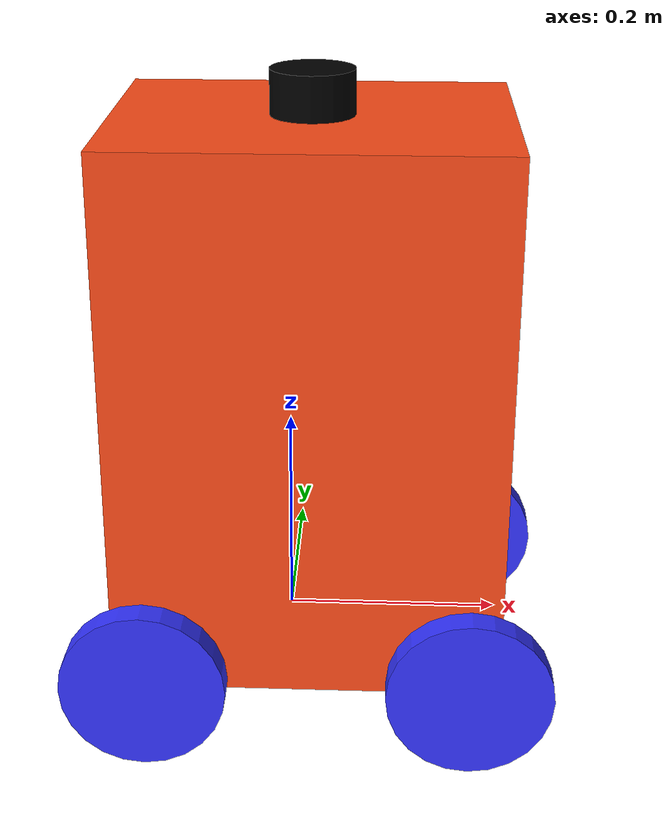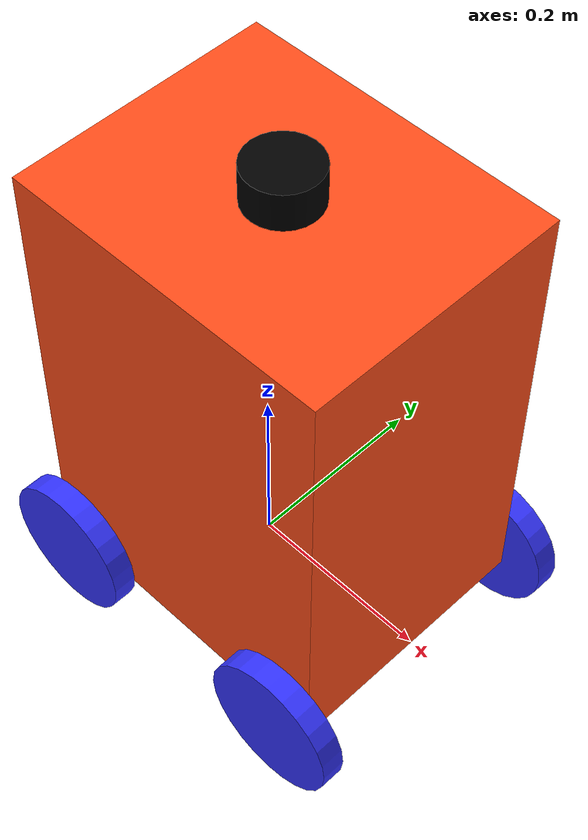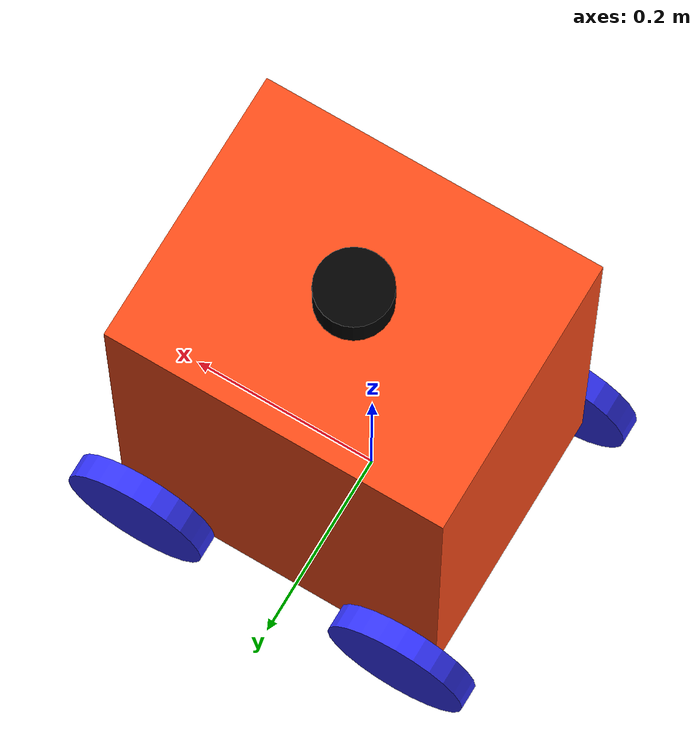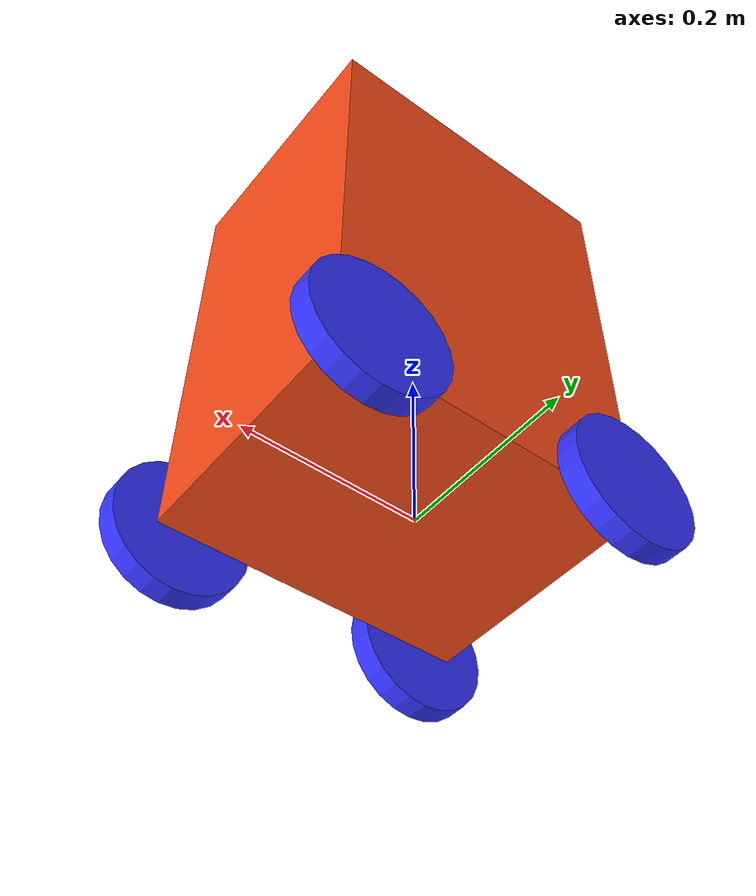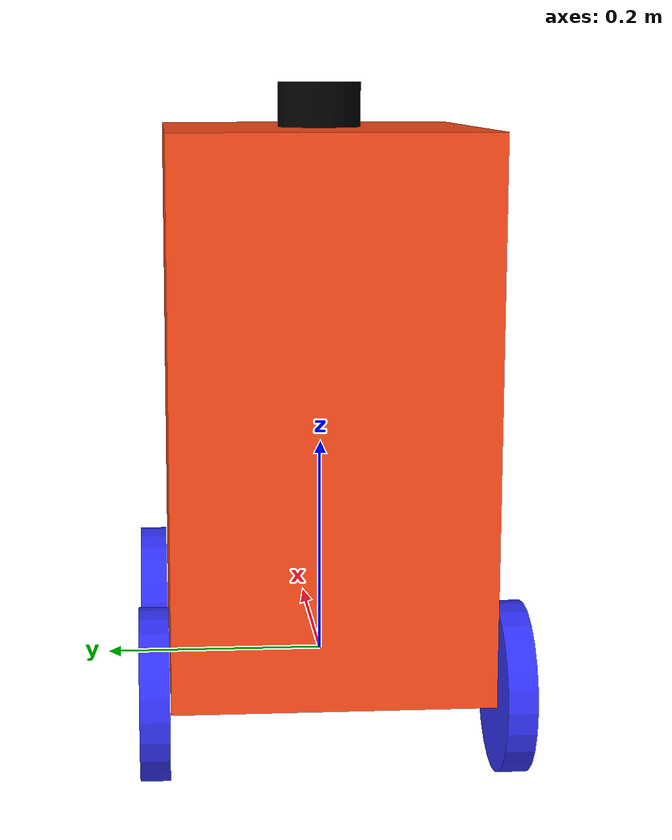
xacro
<?xml version='1.0'?>

<robot name="trail_robot" xmlns:xacro="http://www.ros.org/wiki/xacro">

  <!-- Arguments -->
  <xacro:arg name="use_ros1_control" default="false"/>
  <xacro:arg name="sim_mode" default="false"/>

  <!-- Include Core Components -->
  <xacro:include filename="robot_core.xacro" />

  <!-- Conditional Includes -->
  <xacro:if value="$(arg use_ros1_control)">
    <xacro:include filename="ros1_control.xacro" />
  </xacro:if>

  <xacro:unless value="$(arg use_ros1_control)">
    <xacro:include filename="gazebo_control.xacro" />
  </xacro:unless>

  <!-- Additional Components -->
  <xacro:include filename="lidar.xacro" />

</robot>

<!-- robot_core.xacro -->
<robot xmlns:xacro="http://www.ros.org/wiki/xacro" >

    <xacro:include filename="inertial_macros.xacro"/>

    <xacro:property name="chassis_length" value="0.3556"/>
    <xacro:property name="chassis_width" value="0.28575"/>
    <xacro:property name="chassis_height" value="0.5000625"/>
    <xacro:property name="chassis_mass" value="1.0"/>

    <xacro:property name="wheel_radius" value="0.0762"/>
    <xacro:property name="wheel_thickness" value="0.026"/>
    <xacro:property name="wheel_mass" value="0.05"/>
    <xacro:property name="wheel_offset_x" value="0.1571625"/>
    <xacro:property name="wheel_offset_y" value="0.136525"/>
    <xacro:property name="wheel_offset_z" value="0.01"/>

    <xacro:property name="caster_wheel_radius" value="0.01"/>
    <xacro:property name="caster_wheel_mass" value="0.01"/>
    <xacro:property name="caster_wheel_offset_x" value="0.075"/>
    <xacro:property name="caster_wheel_offset_z" value="${wheel_offset_z - wheel_radius + caster_wheel_radius}"/>

    <material name="white">
        <color rgba="1 1 1 1" />
    </material>

    <material name="orange">
        <color rgba="1 0.3 0.1 1"/>
    </material>

    <material name="blue">
        <color rgba="0.2 0.2 1 1"/>
    </material>

    <material name="black">
        <color rgba="0 0 0 1"/>
    </material>

    <material name="red">
        <color rgba="1 0 0 1"/>
    </material>

    <!-- BASE LINK -->

    <link name="base_link">

    </link>

    <!-- BASE_FOOTPRINT LINK -->

    <joint name="base_footprint_joint" type="fixed">
        <parent link="base_link"/>
        <child link="base_footprint"/>
        <origin xyz="0 0 0" rpy="0 0 0"/>
    </joint>

    <link name="base_footprint">
    </link>

    <!-- CHASSIS LINK -->

    <joint name="chassis_joint" type="fixed">
        <parent link="base_link"/>
        <child link="chassis"/>
        <origin xyz="${-wheel_offset_x} 0 ${-wheel_offset_z}"/>
    </joint>

    <link name="chassis">
        <visual>
            <origin xyz="${chassis_length/2} 0 ${chassis_height/2}"/>
            <geometry>
                <box size="${chassis_length} ${chassis_width} ${chassis_height}"/>
            </geometry>
            <material name="orange"/>
        </visual>
        <collision>
            <origin xyz="${chassis_length/2} 0 ${chassis_height/2}"/>
            <geometry>
                <box size="${chassis_length} ${chassis_width} ${chassis_height}"/>
            </geometry>
        </collision>
        <xacro:inertial_box mass="0.5" x="${chassis_length}" y="${chassis_width}" z="${chassis_height}">
            <origin xyz="${chassis_length/2} 0 ${chassis_height/2}" rpy="0 0 0"/>
        </xacro:inertial_box>
    </link>

    <gazebo reference="chassis">
        <material>Gazebo/Orange</material>
    </gazebo>

    <!-- LEFT FRONT WHEEL LINK -->

    <joint name="left_wheel_joint" type="continuous">
        <parent link="base_link"/>
        <child link="left_wheel"/>
        <origin xyz="0.17 0.1571625 0" rpy="-${pi/2} 0 0" />
        <axis xyz="0 0 1"/>
    </joint>

    <link name="left_wheel">
        <visual>
            <geometry>
                <cylinder radius="${wheel_radius}" length="${wheel_thickness}"/>
            </geometry>
            <material name="blue"/>
        </visual>
        <collision>
            <geometry>
                <sphere radius="${wheel_radius}"/>
            </geometry>
        </collision>
        <xacro:inertial_cylinder mass="${wheel_mass}" length="${wheel_thickness}" radius="${wheel_radius}">
            <origin xyz="0 0 0" rpy="0 0 0"/>
        </xacro:inertial_cylinder>
    </link>

    <gazebo reference="left_wheel">
        <material>Gazebo/Blue</material>
    </gazebo>

<!-- LEFT REAR WHEEL LINK -->

    <joint name="left_rear_wheel_joint" type="continuous">
        <parent link="base_link"/>
        <child link="left_rear_wheel"/>
        <origin xyz="-0.127 0.1571625 0" rpy="-${pi/2} 0 0" />
        <axis xyz="0 0 1"/>
    </joint>

    <link name="left_rear_wheel">
        <visual>
            <geometry>
                <cylinder radius="${wheel_radius}" length="${wheel_thickness}"/>
            </geometry>
            <material name="blue"/>
        </visual>
        <collision>
            <geometry>
                <sphere radius="${wheel_radius}"/>
            </geometry>
        </collision>
        <xacro:inertial_cylinder mass="${wheel_mass}" length="${wheel_thickness}" radius="${wheel_radius}">
            <origin xyz="0 0 0" rpy="0 0 0"/>
        </xacro:inertial_cylinder>
    </link>

    <gazebo reference="left_rear_wheel">
        <material>Gazebo/Blue</material>
    </gazebo>

    <!-- RIGHT WHEEL LINK -->

    <joint name="right_wheel_joint" type="continuous">
        <parent link="base_link"/>
        <child link="right_wheel"/>
        <origin xyz="0.17 -0.1571625 0" rpy="${pi/2} 0 0" />
        <axis xyz="0 0 -1"/>
    </joint>

    <link name="right_wheel">
        <visual>
            <geometry>
                <cylinder radius="${wheel_radius}" length="${wheel_thickness}"/>
            </geometry>
            <material name="blue"/>
        </visual>
        <collision>
            <geometry>
                <sphere radius="${wheel_radius}"/>
            </geometry>
        </collision>
        <xacro:inertial_cylinder mass="${wheel_mass}" length="${wheel_thickness}" radius="${wheel_radius}">
            <origin xyz="0 0 0" rpy="0 0 0"/>
        </xacro:inertial_cylinder>
    </link>

    <!-- RIGHT REAR WHEEL LINK -->

    <joint name="right_rear_wheel_joint" type="continuous">
        <parent link="base_link"/>
        <child link="right_rear_wheel"/>
        <origin xyz="-0.127 -0.1571625 0" rpy="${pi/2} 0 0" />
        <axis xyz="0 0 -1"/>
    </joint>

    <link name="right_rear_wheel">
        <visual>
            <geometry>
                <cylinder radius="${wheel_radius}" length="${wheel_thickness}"/>
            </geometry>
            <material name="blue"/>
        </visual>
        <collision>
            <geometry>
                <sphere radius="${wheel_radius}"/>
            </geometry>
        </collision>
        <xacro:inertial_cylinder mass="${wheel_mass}" length="${wheel_thickness}" radius="${wheel_radius}">
            <origin xyz="0 0 0" rpy="0 0 0"/>
        </xacro:inertial_cylinder>
    </link>

    <gazebo reference="right_rear_wheel">
        <material>Gazebo/Blue</material>
    </gazebo>

</robot>

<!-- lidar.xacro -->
<robot xmlns:xacro="http://www.ros.org/wiki/xacro" >

    <joint name="laser_joint" type="fixed">
        <parent link="chassis"/>
        <child link="laser_frame"/>
        <origin xyz="0.1778 0 0.5200625" rpy="0 0 0"/>
    </joint>

    <link name="laser_frame">
        <visual>
            <geometry>
                <cylinder radius="0.038" length="0.041"/>
            </geometry>
            <material name="black"/>
        </visual>

        <collision>
            <geometry>
                <cylinder radius="0.05" length="0.04"/>
            </geometry>
        </collision>
        <xacro:inertial_cylinder mass="0.1" length="0.04" radius="0.05">
            <origin xyz="0 0 0" rpy="0 0 0"/>
        </xacro:inertial_cylinder>
    </link>

</robot>
